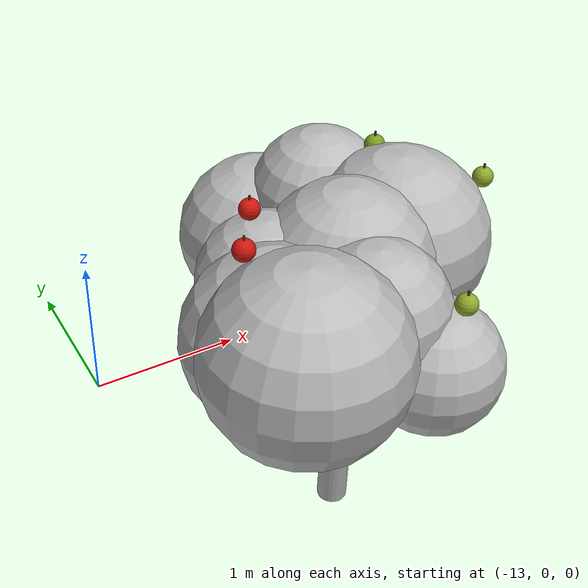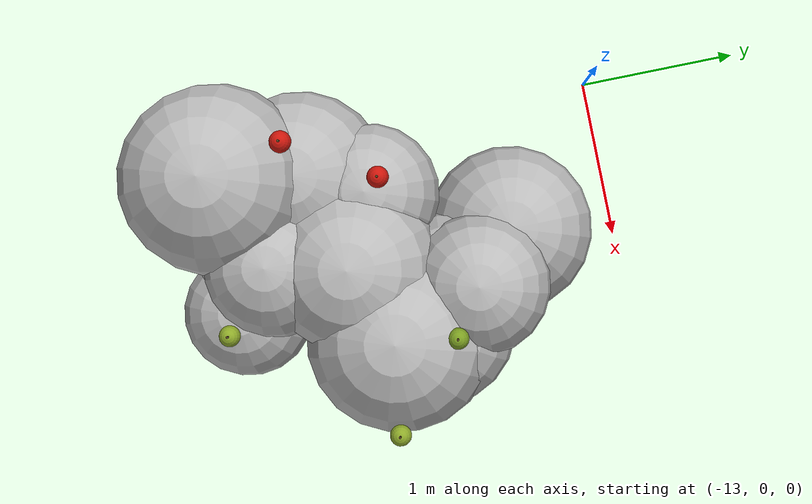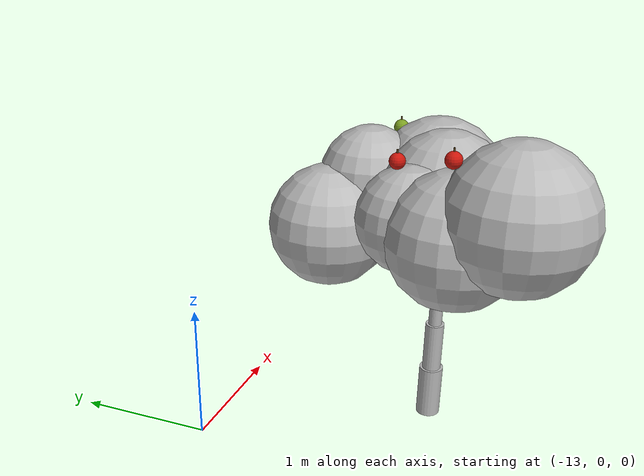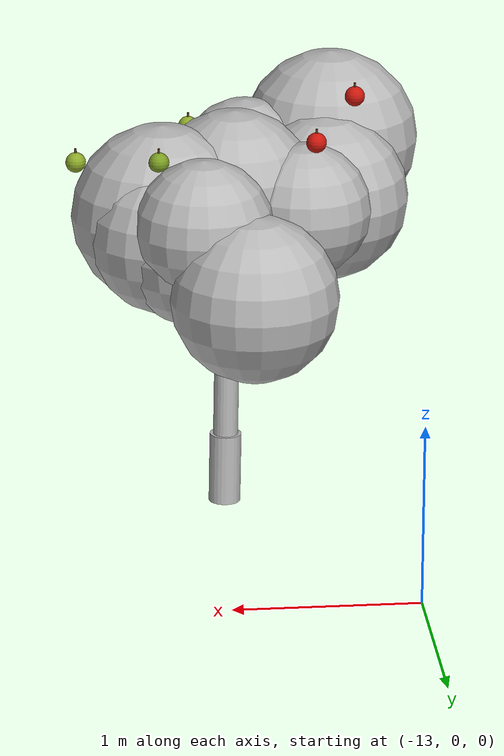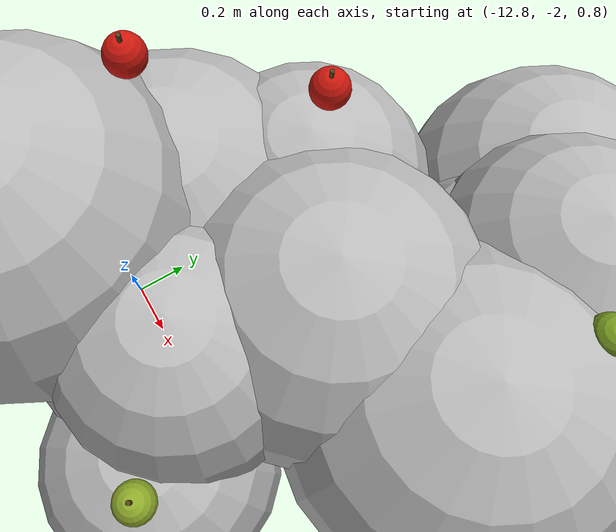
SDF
<sdf version="1.6">
 <world name="default">
  <model name="tree_r2_t2">
   <static>true</static>
   <link name="tree_r2_t2_trunk0">
    <pose>-12.0783 -1.4920 0.1882 0.0269 -0.0204 0</pose>
    <collision name="tree_r2_t2_trunk0_c">
     <geometry><cylinder><radius>0.0883</radius><length>0.3989</length></cylinder></geometry>
    </collision>
    <visual name="tree_r2_t2_trunk0_v">
     <geometry><cylinder><radius>0.0883</radius><length>0.3989</length></cylinder></geometry>
     <material>
      <script>
       <uri>model://orchard/materials/scripts</uri>
       <uri>model://orchard/materials/textures</uri>
       <name>Orchard/Bark</name>
      </script>
     </material>
    </visual>
   </link>
   <link name="tree_r2_t2_trunk1">
    <pose>-12.0859 -1.5021 0.5645 0.0269 -0.0204 0</pose>
    <visual name="tree_r2_t2_trunk1_v">
     <geometry><cylinder><radius>0.0689</radius><length>0.3989</length></cylinder></geometry>
     <material>
      <script>
       <uri>model://orchard/materials/scripts</uri>
       <uri>model://orchard/materials/textures</uri>
       <name>Orchard/Bark</name>
      </script>
     </material>
    </visual>
   </link>
   <link name="tree_r2_t2_trunk2">
    <pose>-12.0936 -1.5123 0.9409 0.0269 -0.0204 0</pose>
    <visual name="tree_r2_t2_trunk2_v">
     <geometry><cylinder><radius>0.0494</radius><length>0.3989</length></cylinder></geometry>
     <material>
      <script>
       <uri>model://orchard/materials/scripts</uri>
       <uri>model://orchard/materials/textures</uri>
       <name>Orchard/Bark</name>
      </script>
     </material>
    </visual>
   </link>
   <link name="tree_r2_t2_br0">
    <pose>-11.8756 -1.5116 1.3192 0.0000 0.8624 0.0256</pose>
    <visual name="tree_r2_t2_br0_v">
     <geometry><cylinder><radius>0.0268</radius><length>0.5845</length></cylinder></geometry>
     <material>
      <script>
       <uri>model://orchard/materials/scripts</uri>
       <uri>model://orchard/materials/textures</uri>
       <name>Orchard/Bark</name>
      </script>
     </material>
    </visual>
   </link>
   <link name="tree_r2_t2_br1">
    <pose>-12.0449 -1.2584 1.3307 0.0000 0.9188 1.3705</pose>
    <visual name="tree_r2_t2_br1_v">
     <geometry><cylinder><radius>0.0350</radius><length>0.6646</length></cylinder></geometry>
     <material>
      <script>
       <uri>model://orchard/materials/scripts</uri>
       <uri>model://orchard/materials/textures</uri>
       <name>Orchard/Bark</name>
      </script>
     </material>
    </visual>
   </link>
   <link name="tree_r2_t2_br2">
    <pose>-12.1805 -1.2216 1.3439 0.0000 0.9603 1.8446</pose>
    <visual name="tree_r2_t2_br2_v">
     <geometry><cylinder><radius>0.0238</radius><length>0.7497</length></cylinder></geometry>
     <material>
      <script>
       <uri>model://orchard/materials/scripts</uri>
       <uri>model://orchard/materials/textures</uri>
       <name>Orchard/Bark</name>
      </script>
     </material>
    </visual>
   </link>
   <link name="tree_r2_t2_br3">
    <pose>-12.3724 -1.5551 1.3618 0.0000 0.8730 3.2782</pose>
    <visual name="tree_r2_t2_br3_v">
     <geometry><cylinder><radius>0.0311</radius><length>0.7245</length></cylinder></geometry>
     <material>
      <script>
       <uri>model://orchard/materials/scripts</uri>
       <uri>model://orchard/materials/textures</uri>
       <name>Orchard/Bark</name>
      </script>
     </material>
    </visual>
   </link>
   <link name="tree_r2_t2_br4">
    <pose>-12.3219 -1.7556 1.3918 0.0000 0.8944 3.9567</pose>
    <visual name="tree_r2_t2_br4_v">
     <geometry><cylinder><radius>0.0351</radius><length>0.8395</length></cylinder></geometry>
     <material>
      <script>
       <uri>model://orchard/materials/scripts</uri>
       <uri>model://orchard/materials/textures</uri>
       <name>Orchard/Bark</name>
      </script>
     </material>
    </visual>
   </link>
   <link name="tree_r2_t2_br5">
    <pose>-12.0140 -1.7038 1.3950 0.0000 0.6549 5.1333</pose>
    <visual name="tree_r2_t2_br5_v">
     <geometry><cylinder><radius>0.0292</radius><length>0.6708</length></cylinder></geometry>
     <material>
      <script>
       <uri>model://orchard/materials/scripts</uri>
       <uri>model://orchard/materials/textures</uri>
       <name>Orchard/Bark</name>
      </script>
     </material>
    </visual>
   </link>
   <link name="tree_r2_t2_fol0">
    <pose>-12.1364 -1.5371 1.7991 0 0 0</pose>
    <visual name="tree_r2_t2_fol0_v">
     <geometry><sphere><radius>0.4527</radius></sphere></geometry>
     <material>
      <script>
       <uri>model://orchard/materials/scripts</uri>
       <uri>model://orchard/materials/textures</uri>
       <name>Orchard/Foliage2</name>
      </script>
     </material>
    </visual>
   </link>
   <link name="tree_r2_t2_fol1">
    <pose>-11.7497 -1.1852 1.6669 0 0 0</pose>
    <visual name="tree_r2_t2_fol1_v">
     <geometry><sphere><radius>0.4209</radius></sphere></geometry>
     <material>
      <script>
       <uri>model://orchard/materials/scripts</uri>
       <uri>model://orchard/materials/textures</uri>
       <name>Orchard/Foliage0</name>
      </script>
     </material>
    </visual>
   </link>
   <link name="tree_r2_t2_fol2">
    <pose>-12.5065 -1.3900 1.7297 0 0 0</pose>
    <visual name="tree_r2_t2_fol2_v">
     <geometry><sphere><radius>0.3677</radius></sphere></geometry>
     <material>
      <script>
       <uri>model://orchard/materials/scripts</uri>
       <uri>model://orchard/materials/textures</uri>
       <name>Orchard/Foliage1</name>
      </script>
     </material>
    </visual>
   </link>
   <link name="tree_r2_t2_fol3">
    <pose>-11.9273 -0.9200 1.7958 0 0 0</pose>
    <visual name="tree_r2_t2_fol3_v">
     <geometry><sphere><radius>0.3733</radius></sphere></geometry>
     <material>
      <script>
       <uri>model://orchard/materials/scripts</uri>
       <uri>model://orchard/materials/textures</uri>
       <name>Orchard/Foliage2</name>
      </script>
     </material>
    </visual>
   </link>
   <link name="tree_r2_t2_fol4">
    <pose>-11.7345 -1.3798 1.7303 0 0 0</pose>
    <visual name="tree_r2_t2_fol4_v">
     <geometry><sphere><radius>0.4964</radius></sphere></geometry>
     <material>
      <script>
       <uri>model://orchard/materials/scripts</uri>
       <uri>model://orchard/materials/textures</uri>
       <name>Orchard/Foliage1</name>
      </script>
     </material>
    </visual>
   </link>
   <link name="tree_r2_t2_fol5">
    <pose>-11.9168 -1.0678 1.6309 0 0 0</pose>
    <visual name="tree_r2_t2_fol5_v">
     <geometry><sphere><radius>0.4223</radius></sphere></geometry>
     <material>
      <script>
       <uri>model://orchard/materials/scripts</uri>
       <uri>model://orchard/materials/textures</uri>
       <name>Orchard/Foliage3</name>
      </script>
     </material>
    </visual>
   </link>
   <link name="tree_r2_t2_fol6">
    <pose>-12.0227 -2.1534 1.5893 0 0 0</pose>
    <visual name="tree_r2_t2_fol6_v">
     <geometry><sphere><radius>0.3444</radius></sphere></geometry>
     <material>
      <script>
       <uri>model://orchard/materials/scripts</uri>
       <uri>model://orchard/materials/textures</uri>
       <name>Orchard/Foliage3</name>
      </script>
     </material>
    </visual>
   </link>
   <link name="tree_r2_t2_fol7">
    <pose>-12.1796 -0.6996 1.4727 0 0 0</pose>
    <visual name="tree_r2_t2_fol7_v">
     <geometry><sphere><radius>0.4499</radius></sphere></geometry>
     <material>
      <script>
       <uri>model://orchard/materials/scripts</uri>
       <uri>model://orchard/materials/textures</uri>
       <name>Orchard/Foliage2</name>
      </script>
     </material>
    </visual>
   </link>
   <link name="tree_r2_t2_fol8">
    <pose>-12.6545 -1.7351 1.6885 0 0 0</pose>
    <visual name="tree_r2_t2_fol8_v">
     <geometry><sphere><radius>0.4642</radius></sphere></geometry>
     <material>
      <script>
       <uri>model://orchard/materials/scripts</uri>
       <uri>model://orchard/materials/textures</uri>
       <name>Orchard/Foliage2</name>
      </script>
     </material>
    </visual>
   </link>
   <link name="tree_r2_t2_fol9">
    <pose>-12.7220 -2.1294 1.9124 0 0 0</pose>
    <visual name="tree_r2_t2_fol9_v">
     <geometry><sphere><radius>0.4935</radius></sphere></geometry>
     <material>
      <script>
       <uri>model://orchard/materials/scripts</uri>
       <uri>model://orchard/materials/textures</uri>
       <name>Orchard/Foliage2</name>
      </script>
     </material>
    </visual>
   </link>
   <link name="tree_r2_t2_fol10">
    <pose>-12.6761 -1.7368 1.6902 0 0 0</pose>
    <visual name="tree_r2_t2_fol10_v">
     <geometry><sphere><radius>0.4372</radius></sphere></geometry>
     <material>
      <script>
       <uri>model://orchard/materials/scripts</uri>
       <uri>model://orchard/materials/textures</uri>
       <name>Orchard/Foliage2</name>
      </script>
     </material>
    </visual>
   </link>
   <link name="tree_r2_t2_fol11">
    <pose>-12.2276 -1.9348 1.8313 0 0 0</pose>
    <visual name="tree_r2_t2_fol11_v">
     <geometry><sphere><radius>0.3658</radius></sphere></geometry>
     <material>
      <script>
       <uri>model://orchard/materials/scripts</uri>
       <uri>model://orchard/materials/textures</uri>
       <name>Orchard/Foliage3</name>
      </script>
     </material>
    </visual>
   </link>
   <link name="tree_r2_t2_fol12">
    <pose>-12.3534 -1.9950 1.7050 0 0 0</pose>
    <visual name="tree_r2_t2_fol12_v">
     <geometry><sphere><radius>0.3555</radius></sphere></geometry>
     <material>
      <script>
       <uri>model://orchard/materials/scripts</uri>
       <uri>model://orchard/materials/textures</uri>
       <name>Orchard/Foliage0</name>
      </script>
     </material>
    </visual>
   </link>
   <link name="tree_r2_t2_ap0">
    <pose>-11.7003 -1.0732 2.1179 0 0 0</pose>
    <visual name="tree_r2_t2_ap0_v">
     <geometry><sphere><radius>0.0550</radius></sphere></geometry>
     <material>
      <ambient>0.192 0.248 0.052 1.00</ambient>
      <diffuse>0.480 0.620 0.130 1.00</diffuse>
      <specular>0.45 0.35 0.32 1</specular>
     </material>
    </visual>
   </link>
   <link name="tree_r2_t2_st0">
    <pose>-11.7003 -1.0732 2.1702 0 0 0</pose>
    <visual name="tree_r2_t2_st0_v">
     <geometry><cylinder><radius>0.0060</radius><length>0.0500</length></cylinder></geometry>
     <material><ambient>0.128 0.096 0.040 1.00</ambient><diffuse>0.320 0.240 0.100 1.00</diffuse></material>
    </visual>
   </link>
   <link name="tree_r2_t2_ap1">
    <pose>-11.9292 -2.2082 1.9680 0 0 0</pose>
    <visual name="tree_r2_t2_ap1_v">
     <geometry><sphere><radius>0.0550</radius></sphere></geometry>
     <material>
      <ambient>0.220 0.264 0.064 1.00</ambient>
      <diffuse>0.550 0.660 0.160 1.00</diffuse>
      <specular>0.45 0.35 0.32 1</specular>
     </material>
    </visual>
   </link>
   <link name="tree_r2_t2_st1">
    <pose>-11.9292 -2.2082 2.0202 0 0 0</pose>
    <visual name="tree_r2_t2_st1_v">
     <geometry><cylinder><radius>0.0060</radius><length>0.0500</length></cylinder></geometry>
     <material><ambient>0.128 0.096 0.040 1.00</ambient><diffuse>0.320 0.240 0.100 1.00</diffuse></material>
    </visual>
   </link>
   <link name="tree_r2_t2_ap2">
    <pose>-12.8153 -1.7251 2.2628 0 0 0</pose>
    <visual name="tree_r2_t2_ap2_v">
     <geometry><sphere><radius>0.0550</radius></sphere></geometry>
     <material>
      <ambient>0.320 0.036 0.020 1.00</ambient>
      <diffuse>0.800 0.090 0.050 1.00</diffuse>
      <specular>0.45 0.35 0.32 1</specular>
     </material>
    </visual>
   </link>
   <link name="tree_r2_t2_st2">
    <pose>-12.8153 -1.7251 2.3150 0 0 0</pose>
    <visual name="tree_r2_t2_st2_v">
     <geometry><cylinder><radius>0.0060</radius><length>0.0500</length></cylinder></geometry>
     <material><ambient>0.128 0.096 0.040 1.00</ambient><diffuse>0.320 0.240 0.100 1.00</diffuse></material>
    </visual>
   </link>
   <link name="tree_r2_t2_ap3">
    <pose>-11.2718 -1.4550 2.0101 0 0 0</pose>
    <visual name="tree_r2_t2_ap3_v">
     <geometry><sphere><radius>0.0550</radius></sphere></geometry>
     <material>
      <ambient>0.220 0.264 0.064 1.00</ambient>
      <diffuse>0.550 0.660 0.160 1.00</diffuse>
      <specular>0.45 0.35 0.32 1</specular>
     </material>
    </visual>
   </link>
   <link name="tree_r2_t2_st3">
    <pose>-11.2718 -1.4550 2.0624 0 0 0</pose>
    <visual name="tree_r2_t2_st3_v">
     <geometry><cylinder><radius>0.0060</radius><length>0.0500</length></cylinder></geometry>
     <material><ambient>0.128 0.096 0.040 1.00</ambient><diffuse>0.320 0.240 0.100 1.00</diffuse></material>
    </visual>
   </link>
   <link name="tree_r2_t2_ap4">
    <pose>-12.5624 -1.3046 2.1342 0 0 0</pose>
    <visual name="tree_r2_t2_ap4_v">
     <geometry><sphere><radius>0.0550</radius></sphere></geometry>
     <material>
      <ambient>0.320 0.036 0.020 1.00</ambient>
      <diffuse>0.800 0.090 0.050 1.00</diffuse>
      <specular>0.45 0.35 0.32 1</specular>
     </material>
    </visual>
   </link>
   <link name="tree_r2_t2_st4">
    <pose>-12.5624 -1.3046 2.1864 0 0 0</pose>
    <visual name="tree_r2_t2_st4_v">
     <geometry><cylinder><radius>0.0060</radius><length>0.0500</length></cylinder></geometry>
     <material><ambient>0.128 0.096 0.040 1.00</ambient><diffuse>0.320 0.240 0.100 1.00</diffuse></material>
    </visual>
   </link>
  </model>
 </world>
</sdf>
